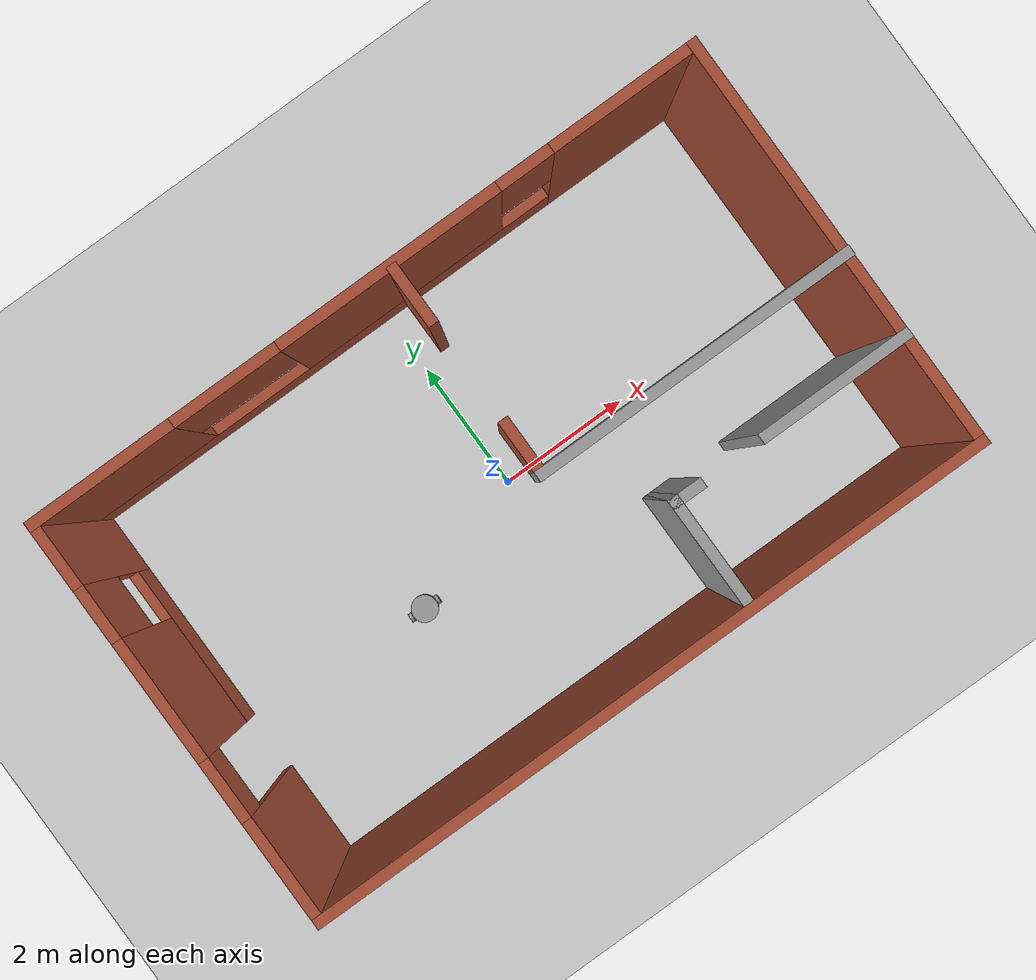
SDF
<sdf version="1.6">
 <world name="default">
  <plugin name="print_str" filename="libprint_str.so"/>
  <light name="sun" type="directional">
   <pose>0 0 10 0 -0 0</pose>
   <diffuse>0.8 0.8 0.8 1</diffuse>
   <specular>0.2 0.2 0.2 1</specular>
   <attenuation>
    <range>1000</range>
    <constant>0.9</constant>
    <linear>0.01</linear>
    <quadratic>0.001</quadratic>
   </attenuation>
   <direction>-0.5 0.1 -0.9</direction>
  </light>
  <model name="ground_plane">
   <static>1</static>
   <link name="link">
    <collision name="collision">
     <geometry><plane><normal>0 0 1</normal><size>100 100</size></plane></geometry>
     <surface><friction><ode><mu>100</mu><mu2>50</mu2></ode></friction></surface>
    </collision>
    <visual name="visual">
     <cast_shadows>0</cast_shadows>
     <geometry><plane><normal>0 0 1</normal><size>100 100</size></plane></geometry>
     <material>
      <script><uri>file://media/materials/scripts/gazebo.material</uri><name>Gazebo/Grey</name></script>
     </material>
    </visual>
   </link>
  </model>
  <gravity>0 0 -9.8</gravity>
  <magnetic_field>6e-06 2.3e-05 -4.2e-05</magnetic_field>
  <atmosphere type="adiabatic"/>
  <physics name="default_physics" default="0" type="ode">
   <max_step_size>0.001</max_step_size>
   <real_time_factor>1</real_time_factor>
   <real_time_update_rate>1000</real_time_update_rate>
  </physics>
  <scene><ambient>0.4 0.4 0.4 1</ambient><background>0.7 0.7 0.7 1</background><shadows>1</shadows></scene>
  <spherical_coordinates>
   <surface_model>EARTH_WGS84</surface_model>
   <latitude_deg>0</latitude_deg>
   <longitude_deg>0</longitude_deg>
   <elevation>0</elevation>
   <heading_deg>0</heading_deg>
  </spherical_coordinates>
  <model name="building">
   <pose>-0.014264 -0.00519 0 0 -0 0</pose>
   <link name="Wall_1">
    <collision name="Wall_1_Collision">
     <geometry><box><size>10.15 0.15 2.5</size></box></geometry>
     <pose>0 0 1.25 0 -0 0</pose>
    </collision>
    <visual name="Wall_1_Visual">
     <pose>0 0 1.25 0 -0 0</pose>
     <geometry><box><size>10.15 0.15 2.5</size></box></geometry>
     <material>
      <script><uri>file://media/materials/scripts/gazebo.material</uri><name>Gazebo/Bricks</name></script>
      <ambient>0.760784 0.662745 0.627451 1</ambient>
     </material>
     <meta><layer>0</layer></meta>
    </visual>
    <pose>-0.006393 -3 0 0 -0 0</pose>
   </link>
   <link name="Wall_11">
    <collision name="Wall_11_Collision">
     <geometry><box><size>2.25 0.15 2.5</size></box></geometry>
     <pose>0 0 1.25 0 -0 0</pose>
    </collision>
    <visual name="Wall_11_Visual">
     <pose>0 0 1.25 0 -0 0</pose>
     <geometry><box><size>2.25 0.15 2.5</size></box></geometry>
     <material>
      <script><uri>file://media/materials/scripts/gazebo.material</uri><name>Gazebo/Grey</name></script>
      <ambient>1 1 1 1</ambient>
     </material>
     <meta><layer>0</layer></meta>
    </visual>
    <pose>3.94466 -1.38999 0 0 -0 3.14159</pose>
   </link>
   <link name="Wall_14">
    <collision name="Wall_14_Collision">
     <geometry><box><size>4.75 0.15 2.5</size></box></geometry>
     <pose>0 0 1.25 0 -0 0</pose>
    </collision>
    <visual name="Wall_14_Visual">
     <pose>0 0 1.25 0 -0 0</pose>
     <geometry><box><size>4.75 0.15 2.5</size></box></geometry>
     <material>
      <script><uri>file://media/materials/scripts/gazebo.material</uri><name>Gazebo/Grey</name></script>
      <ambient>1 1 1 1</ambient>
     </material>
     <meta><layer>0</layer></meta>
    </visual>
    <pose>2.70639 -0.159246 0 0 -0 3.14149</pose>
   </link>
   <link name="Wall_16">
    <collision name="Wall_16_Collision">
     <geometry><box><size>0.9 0.15 2.5</size></box></geometry>
     <pose>0 0 1.25 0 -0 0</pose>
    </collision>
    <visual name="Wall_16_Visual">
     <pose>0 0 1.25 0 -0 0</pose>
     <geometry><box><size>0.9 0.15 2.5</size></box></geometry>
     <material>
      <script><uri>file://media/materials/scripts/gazebo.material</uri><name>Gazebo/Bricks</name></script>
      <ambient>1 1 1 1</ambient>
     </material>
     <meta><layer>0</layer></meta>
    </visual>
    <pose>0.406607 0.216 0 0 -0 1.5708</pose>
   </link>
   <link name="Wall_2">
    <collision name="Wall_2_Collision">
     <geometry><box><size>6.15 0.15 2.5</size></box></geometry>
     <pose>0 0 1.25 0 -0 0</pose>
    </collision>
    <visual name="Wall_2_Visual">
     <pose>0 0 1.25 0 -0 0</pose>
     <geometry><box><size>6.15 0.15 2.5</size></box></geometry>
     <material>
      <script><uri>file://media/materials/scripts/gazebo.material</uri><name>Gazebo/Bricks</name></script>
      <ambient>1 1 1 1</ambient>
     </material>
     <meta><layer>0</layer></meta>
    </visual>
    <pose>4.99361 0 0 0 -0 1.5708</pose>
   </link>
   <link name="Wall_21">
    <collision name="Wall_21_Collision">
     <geometry><box><size>0.9 0.15 2.5</size></box></geometry>
     <pose>0 0 1.25 0 -0 0</pose>
    </collision>
    <visual name="Wall_21_Visual">
     <pose>0 0 1.25 0 -0 0</pose>
     <geometry><box><size>0.9 0.15 2.5</size></box></geometry>
     <material>
      <script><uri>file://media/materials/scripts/gazebo.material</uri><name>Gazebo/Bricks</name></script>
      <ambient>1 1 1 1</ambient>
     </material>
     <meta><layer>0</layer></meta>
    </visual>
    <pose>0.406607 2.548 0 0 0 -1.5708</pose>
   </link>
   <link name="Wall_3">
    <pose>-0.006393 3 0 0 -0 3.14159</pose>
    <visual name="Wall_3_Visual_0">
     <pose>-3.95578 0 1.25 0 -0 0</pose>
     <geometry><box><size>2.23845 0.15 2.5</size></box></geometry>
     <material>
      <script><uri>file://media/materials/scripts/gazebo.material</uri><name>Gazebo/Bricks</name></script>
      <ambient>0.760784 0.662745 0.627451 1</ambient>
     </material>
     <meta><layer>0</layer></meta>
    </visual>
    <collision name="Wall_3_Collision_0">
     <geometry><box><size>2.23845 0.15 2.5</size></box></geometry>
     <pose>-3.95578 0 1.25 0 -0 0</pose>
    </collision>
    <visual name="Wall_3_Visual_1">
     <pose>1.11922 0 0.25 0 -0 0</pose>
     <geometry><box><size>7.91155 0.15 0.5</size></box></geometry>
     <material>
      <script><uri>file://media/materials/scripts/gazebo.material</uri><name>Gazebo/Bricks</name></script>
      <ambient>0.760784 0.662745 0.627451 1</ambient>
     </material>
     <meta><layer>0</layer></meta>
    </visual>
    <collision name="Wall_3_Collision_1">
     <geometry><box><size>7.91155 0.15 0.5</size></box></geometry>
     <pose>1.11922 0 0.25 0 -0 0</pose>
    </collision>
    <visual name="Wall_3_Visual_2">
     <pose>-0.371055 0 1.5 0 -0 0</pose>
     <geometry><box><size>3.331 0.15 2</size></box></geometry>
     <material>
      <script><uri>file://media/materials/scripts/gazebo.material</uri><name>Gazebo/Bricks</name></script>
      <ambient>0.760784 0.662745 0.627451 1</ambient>
     </material>
     <meta><layer>0</layer></meta>
    </visual>
    <collision name="Wall_3_Collision_2">
     <geometry><box><size>3.331 0.15 2</size></box></geometry>
     <pose>-0.371055 0 1.5 0 -0 0</pose>
    </collision>
    <visual name="Wall_3_Visual_3">
     <pose>3.98472 0 1.5 0 -0 0</pose>
     <geometry><box><size>2.18056 0.15 2</size></box></geometry>
     <material>
      <script><uri>file://media/materials/scripts/gazebo.material</uri><name>Gazebo/Bricks</name></script>
      <ambient>0.760784 0.662745 0.627451 1</ambient>
     </material>
     <meta><layer>0</layer></meta>
    </visual>
    <collision name="Wall_3_Collision_3">
     <geometry><box><size>2.18056 0.15 2</size></box></geometry>
     <pose>3.98472 0 1.5 0 -0 0</pose>
    </collision>
    <visual name="Wall_3_Visual_4">
     <pose>-2.43655 0 1.9 0 -0 0</pose>
     <geometry><box><size>0.8 0.15 1.2</size></box></geometry>
     <material>
      <script><uri>file://media/materials/scripts/gazebo.material</uri><name>Gazebo/Bricks</name></script>
      <ambient>0.760784 0.662745 0.627451 1</ambient>
     </material>
     <meta><layer>0</layer></meta>
    </visual>
    <collision name="Wall_3_Collision_4">
     <geometry><box><size>0.8 0.15 1.2</size></box></geometry>
     <pose>-2.43655 0 1.9 0 -0 0</pose>
    </collision>
    <visual name="Wall_3_Visual_5">
     <pose>2.09444 0 1.9 0 -0 0</pose>
     <geometry><box><size>1.6 0.15 1.2</size></box></geometry>
     <material>
      <script><uri>file://media/materials/scripts/gazebo.material</uri><name>Gazebo/Bricks</name></script>
      <ambient>0.760784 0.662745 0.627451 1</ambient>
     </material>
     <meta><layer>0</layer></meta>
    </visual>
    <collision name="Wall_3_Collision_5">
     <geometry><box><size>1.6 0.15 1.2</size></box></geometry>
     <pose>2.09444 0 1.9 0 -0 0</pose>
    </collision>
   </link>
   <link name="Wall_4">
    <pose>-5.00639 0 0 0 0 -1.5708</pose>
    <visual name="Wall_4_Visual_0">
     <pose>-2.55475 0 1.25 0 -0 0</pose>
     <geometry><box><size>1.04049 0.15 2.5</size></box></geometry>
     <material>
      <script><uri>file://media/materials/scripts/gazebo.material</uri><name>Gazebo/Bricks</name></script>
      <ambient>1 1 1 1</ambient>
     </material>
     <meta><layer>0</layer></meta>
    </visual>
    <collision name="Wall_4_Collision_0">
     <geometry><box><size>1.04049 0.15 2.5</size></box></geometry>
     <pose>-2.55475 0 1.25 0 -0 0</pose>
    </collision>
    <visual name="Wall_4_Visual_1">
     <pose>2.2735 0 1.25 0 -0 0</pose>
     <geometry><box><size>1.60301 0.15 2.5</size></box></geometry>
     <material>
      <script><uri>file://media/materials/scripts/gazebo.material</uri><name>Gazebo/Bricks</name></script>
      <ambient>1 1 1 1</ambient>
     </material>
     <meta><layer>0</layer></meta>
    </visual>
    <collision name="Wall_4_Collision_1">
     <geometry><box><size>1.60301 0.15 2.5</size></box></geometry>
     <pose>2.2735 0 1.25 0 -0 0</pose>
    </collision>
    <visual name="Wall_4_Visual_2">
     <pose>-0.731257 0 0.25 0 -0 0</pose>
     <geometry><box><size>2.6065 0.15 0.5</size></box></geometry>
     <material>
      <script><uri>file://media/materials/scripts/gazebo.material</uri><name>Gazebo/Bricks</name></script>
      <ambient>1 1 1 1</ambient>
     </material>
     <meta><layer>0</layer></meta>
    </visual>
    <collision name="Wall_4_Collision_2">
     <geometry><box><size>2.6065 0.15 0.5</size></box></geometry>
     <pose>-0.731257 0 0.25 0 -0 0</pose>
    </collision>
    <visual name="Wall_4_Visual_3">
     <pose>-0.331257 0 1.5 0 -0 0</pose>
     <geometry><box><size>1.8065 0.15 2</size></box></geometry>
     <material>
      <script><uri>file://media/materials/scripts/gazebo.material</uri><name>Gazebo/Bricks</name></script>
      <ambient>1 1 1 1</ambient>
     </material>
     <meta><layer>0</layer></meta>
    </visual>
    <collision name="Wall_4_Collision_3">
     <geometry><box><size>1.8065 0.15 2</size></box></geometry>
     <pose>-0.331257 0 1.5 0 -0 0</pose>
    </collision>
    <visual name="Wall_4_Visual_4">
     <pose>-1.63451 0 1.9 0 -0 0</pose>
     <geometry><box><size>0.8 0.15 1.2</size></box></geometry>
     <material>
      <script><uri>file://media/materials/scripts/gazebo.material</uri><name>Gazebo/Bricks</name></script>
      <ambient>1 1 1 1</ambient>
     </material>
     <meta><layer>0</layer></meta>
    </visual>
    <collision name="Wall_4_Collision_4">
     <geometry><box><size>0.8 0.15 1.2</size></box></geometry>
     <pose>-1.63451 0 1.9 0 -0 0</pose>
    </collision>
    <visual name="Wall_4_Visual_5">
     <pose>1.02199 0 2.25 0 -0 0</pose>
     <geometry><box><size>0.9 0.15 0.5</size></box></geometry>
     <material>
      <script><uri>file://media/materials/scripts/gazebo.material</uri><name>Gazebo/Bricks</name></script>
      <ambient>1 1 1 1</ambient>
     </material>
     <meta><layer>0</layer></meta>
    </visual>
    <collision name="Wall_4_Collision_5">
     <geometry><box><size>0.9 0.15 0.5</size></box></geometry>
     <pose>1.02199 0 2.25 0 -0 0</pose>
    </collision>
   </link>
   <link name="Wall_6">
    <collision name="Wall_6_Collision">
     <geometry><box><size>1.75 0.15 2.5</size></box></geometry>
     <pose>0 0 1.25 0 -0 0</pose>
    </collision>
    <visual name="Wall_6_Visual">
     <pose>0 0 1.25 0 -0 0</pose>
     <geometry><box><size>1.75 0.15 2.5</size></box></geometry>
     <material>
      <script><uri>file://media/materials/scripts/gazebo.material</uri><name>Gazebo/Grey</name></script>
      <ambient>1 1 1 1</ambient>
     </material>
     <meta><layer>0</layer></meta>
    </visual>
    <pose>1.52166 -2.19999 0 0 -0 1.5708</pose>
   </link>
   <link name="Wall_7">
    <collision name="Wall_7_Collision">
     <geometry><box><size>0.5 0.15 2.5</size></box></geometry>
     <pose>0 0 1.25 0 -0 0</pose>
    </collision>
    <visual name="Wall_7_Visual">
     <pose>0 0 1.25 0 -0 0</pose>
     <geometry><box><size>0.5 0.15 2.5</size></box></geometry>
     <material>
      <script><uri>file://media/materials/scripts/gazebo.material</uri><name>Gazebo/Grey</name></script>
      <ambient>1 1 1 1</ambient>
     </material>
     <meta><layer>0</layer></meta>
    </visual>
    <pose>1.69666 -1.39999 0 0 -0 0</pose>
   </link>
   <static>1</static>
  </model>
  <model name="robot1">
   <link name="link_0">
    <pose>-2.03778 -0.770855 0.1 0 -0 0</pose>
    <inertial>
     <mass>1</mass>
     <inertia><ixx>0.145833</ixx><ixy>0</ixy><ixz>0</ixz><iyy>0.145833</iyy><iyz>0</iyz><izz>0.125</izz></inertia>
    </inertial>
    <visual name="visual">
     <geometry><cylinder><radius>0.2</radius><length>0.1</length></cylinder></geometry>
     <material>
      <lighting>1</lighting>
      <script><uri>file://media/materials/scripts/gazebo.material</uri><name>Gazebo/Grey</name></script>
      <shader type="pixel"><normal_map>__default__</normal_map></shader>
      <ambient>0.3 0.3 0.3 1</ambient>
      <diffuse>0.7 0.7 0.7 1</diffuse>
      <specular>0.01 0.01 0.01 1</specular>
      <emissive>0 0 0 1</emissive>
     </material>
    </visual>
    <collision name="collision">
     <geometry><cylinder><radius>0.2</radius><length>0.1</length></cylinder></geometry>
     <surface>
      <friction>
       <ode><mu>1</mu><mu2>1</mu2><fdir1>0 0 0</fdir1><slip1>0</slip1><slip2>0</slip2></ode>
       <torsional>
        <coefficient>1</coefficient>
        <patch_radius>0</patch_radius>
        <surface_radius>0</surface_radius>
        <use_patch_radius>1</use_patch_radius>
        <ode><slip>0</slip></ode>
       </torsional>
      </friction>
      <bounce><restitution_coefficient>0</restitution_coefficient><threshold>1e+06</threshold></bounce>
      <contact>
       <collide_without_contact>0</collide_without_contact>
       <collide_without_contact_bitmask>1</collide_without_contact_bitmask>
       <collide_bitmask>1</collide_bitmask>
       <ode>
        <soft_cfm>0</soft_cfm>
        <soft_erp>0.2</soft_erp>
        <kp>1e+13</kp>
        <kd>1</kd>
        <max_vel>0.01</max_vel>
        <min_depth>0</min_depth>
       </ode>
       <bullet>
        <split_impulse>1</split_impulse>
        <split_impulse_penetration_threshold>-0.01</split_impulse_penetration_threshold>
        <soft_cfm>0</soft_cfm>
        <soft_erp>0.2</soft_erp>
        <kp>1e+13</kp>
        <kd>1</kd>
       </bullet>
      </contact>
     </surface>
    </collision>
   </link>
   <link name="link_0_clone">
    <pose>-1.81278 -0.770855 0.100001 -3.14159 1.57079 -3.14159</pose>
    <inertial>
     <mass>1</mass>
     <inertia><ixx>0.145833</ixx><ixy>0</ixy><ixz>0</ixz><iyy>0.145833</iyy><iyz>0</iyz><izz>0.125</izz></inertia>
    </inertial>
    <visual name="visual">
     <geometry><cylinder><radius>0.07</radius><length>0.05</length></cylinder></geometry>
     <material>
      <lighting>1</lighting>
      <script><uri>file://media/materials/scripts/gazebo.material</uri><name>Gazebo/Grey</name></script>
      <shader type="pixel"><normal_map>__default__</normal_map></shader>
      <ambient>0.3 0.3 0.3 1</ambient>
      <diffuse>0.7 0.7 0.7 1</diffuse>
      <specular>0.01 0.01 0.01 1</specular>
      <emissive>0 0 0 1</emissive>
     </material>
    </visual>
    <collision name="collision">
     <geometry><cylinder><radius>0.07</radius><length>0.05</length></cylinder></geometry>
     <surface>
      <friction>
       <ode><mu>1</mu><mu2>1</mu2><fdir1>0 0 0</fdir1><slip1>0</slip1><slip2>0</slip2></ode>
       <torsional>
        <coefficient>1</coefficient>
        <patch_radius>0</patch_radius>
        <surface_radius>0</surface_radius>
        <use_patch_radius>1</use_patch_radius>
        <ode><slip>0</slip></ode>
       </torsional>
      </friction>
      <bounce><restitution_coefficient>0</restitution_coefficient><threshold>1e+06</threshold></bounce>
      <contact>
       <collide_without_contact>0</collide_without_contact>
       <collide_without_contact_bitmask>1</collide_without_contact_bitmask>
       <collide_bitmask>1</collide_bitmask>
       <ode>
        <soft_cfm>0</soft_cfm>
        <soft_erp>0.2</soft_erp>
        <kp>1e+13</kp>
        <kd>1</kd>
        <max_vel>0.01</max_vel>
        <min_depth>0</min_depth>
       </ode>
       <bullet>
        <split_impulse>1</split_impulse>
        <split_impulse_penetration_threshold>-0.01</split_impulse_penetration_threshold>
        <soft_cfm>0</soft_cfm>
        <soft_erp>0.2</soft_erp>
        <kp>1e+13</kp>
        <kd>1</kd>
       </bullet>
      </contact>
     </surface>
    </collision>
   </link>
   <link name="link_0_clone_clone">
    <pose>-2.26278 -0.770855 0.1 -3.14159 1.57079 -3.14159</pose>
    <inertial>
     <mass>1</mass>
     <inertia><ixx>0.145833</ixx><ixy>0</ixy><ixz>0</ixz><iyy>0.145833</iyy><iyz>0</iyz><izz>0.125</izz></inertia>
    </inertial>
    <visual name="visual">
     <geometry><cylinder><radius>0.07</radius><length>0.05</length></cylinder></geometry>
     <material>
      <lighting>1</lighting>
      <script><uri>file://media/materials/scripts/gazebo.material</uri><name>Gazebo/Grey</name></script>
      <shader type="pixel"><normal_map>__default__</normal_map></shader>
      <ambient>0.3 0.3 0.3 1</ambient>
      <diffuse>0.7 0.7 0.7 1</diffuse>
      <specular>0.01 0.01 0.01 1</specular>
      <emissive>0 0 0 1</emissive>
     </material>
    </visual>
    <collision name="collision">
     <geometry><cylinder><radius>0.07</radius><length>0.05</length></cylinder></geometry>
     <surface>
      <friction>
       <ode><mu>1</mu><mu2>1</mu2><fdir1>0 0 0</fdir1><slip1>0</slip1><slip2>0</slip2></ode>
       <torsional>
        <coefficient>1</coefficient>
        <patch_radius>0</patch_radius>
        <surface_radius>0</surface_radius>
        <use_patch_radius>1</use_patch_radius>
        <ode><slip>0</slip></ode>
       </torsional>
      </friction>
      <bounce><restitution_coefficient>0</restitution_coefficient><threshold>1e+06</threshold></bounce>
      <contact>
       <collide_without_contact>0</collide_without_contact>
       <collide_without_contact_bitmask>1</collide_without_contact_bitmask>
       <collide_bitmask>1</collide_bitmask>
       <ode>
        <soft_cfm>0</soft_cfm>
        <soft_erp>0.2</soft_erp>
        <kp>1e+13</kp>
        <kd>1</kd>
        <max_vel>0.01</max_vel>
        <min_depth>0</min_depth>
       </ode>
       <bullet>
        <split_impulse>1</split_impulse>
        <split_impulse_penetration_threshold>-0.01</split_impulse_penetration_threshold>
        <soft_cfm>0</soft_cfm>
        <soft_erp>0.2</soft_erp>
        <kp>1e+13</kp>
        <kd>1</kd>
       </bullet>
      </contact>
     </surface>
    </collision>
   </link>
   <joint name="link_0_JOINT_0" type="revolute">
    <parent>link_0</parent>
    <child>link_0_clone_clone</child>
    <axis>
     <xyz>1 0 0</xyz>
     <use_parent_model_frame>0</use_parent_model_frame>
     <limit>
      <lower>-1.79769e+308</lower>
      <upper>1.79769e+308</upper>
      <effort>-1</effort>
      <velocity>-1</velocity>
     </limit>
     <dynamics>
      <spring_reference>0</spring_reference>
      <spring_stiffness>0</spring_stiffness>
      <damping>0</damping>
     </dynamics>
    </axis>
    <physics>
     <ode><limit><cfm>0</cfm><erp>0.2</erp></limit><suspension><cfm>0</cfm><erp>0.2</erp></suspension></ode>
    </physics>
   </joint>
   <joint name="link_0_JOINT_1" type="revolute">
    <parent>link_0</parent>
    <child>link_0_clone</child>
    <axis>
     <xyz>1 0 0</xyz>
     <use_parent_model_frame>0</use_parent_model_frame>
     <limit>
      <lower>-1.79769e+308</lower>
      <upper>1.79769e+308</upper>
      <effort>-1</effort>
      <velocity>-1</velocity>
     </limit>
     <dynamics>
      <spring_reference>0</spring_reference>
      <spring_stiffness>0</spring_stiffness>
      <damping>0</damping>
     </dynamics>
    </axis>
    <physics>
     <ode><limit><cfm>0</cfm><erp>0.2</erp></limit><suspension><cfm>0</cfm><erp>0.2</erp></suspension></ode>
    </physics>
   </joint>
   <static>0</static>
  </model>
 </world>
</sdf>
